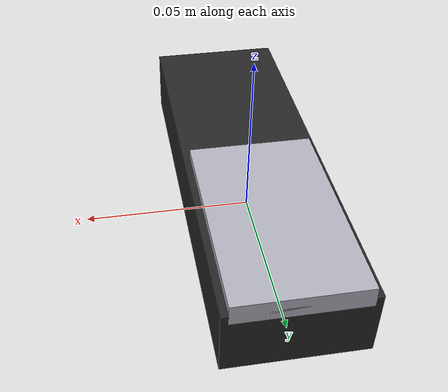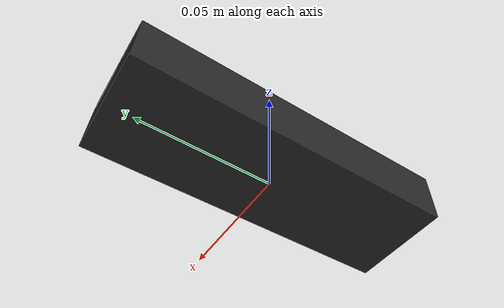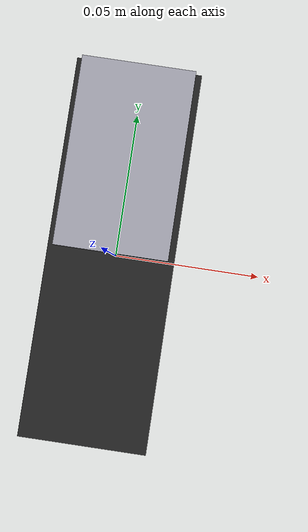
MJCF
<?xml version="1.0" encoding="utf-8"?>
<mujoco model="brix_refractometer">
  <compiler angle="radian" autolimits="true"/>
  <default>
    <default class="body"><geom contype="1" conaffinity="1"/></default>
  </default>
  <worldbody>
    <body name="base">
      <geom type="box" size="0.02 0.06 0.01" pos="0 0 0.01" rgba="0.15 0.15 0.15 1" class="body"/>
      <body name="prism_cover" pos="0 0.03 0.02">
        <joint name="prism_cover_joint" type="hinge" axis="1 0 0" range="0 1.4" damping="0.1" frictionloss="0.05"/>
  <geom type="box" size="0.018 0.03 0.003" pos="0 0 0" rgba="0.7 0.7 0.75 1" class="body"/>
      </body>
    </body>
  </worldbody>
</mujoco>
